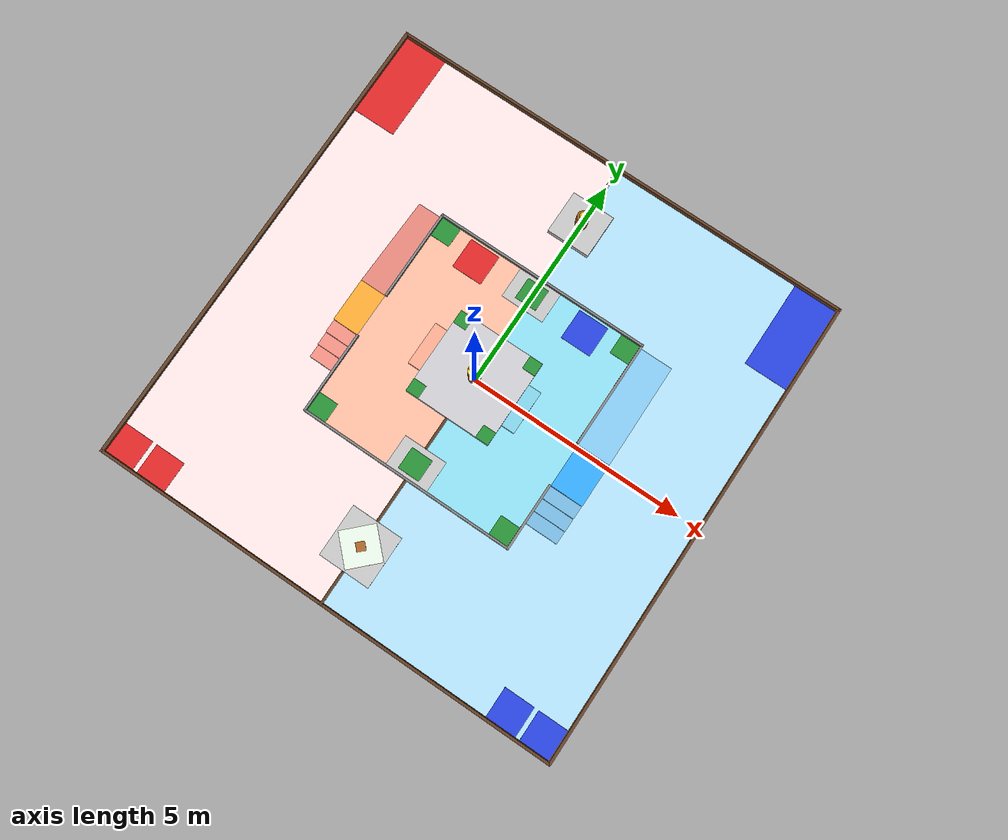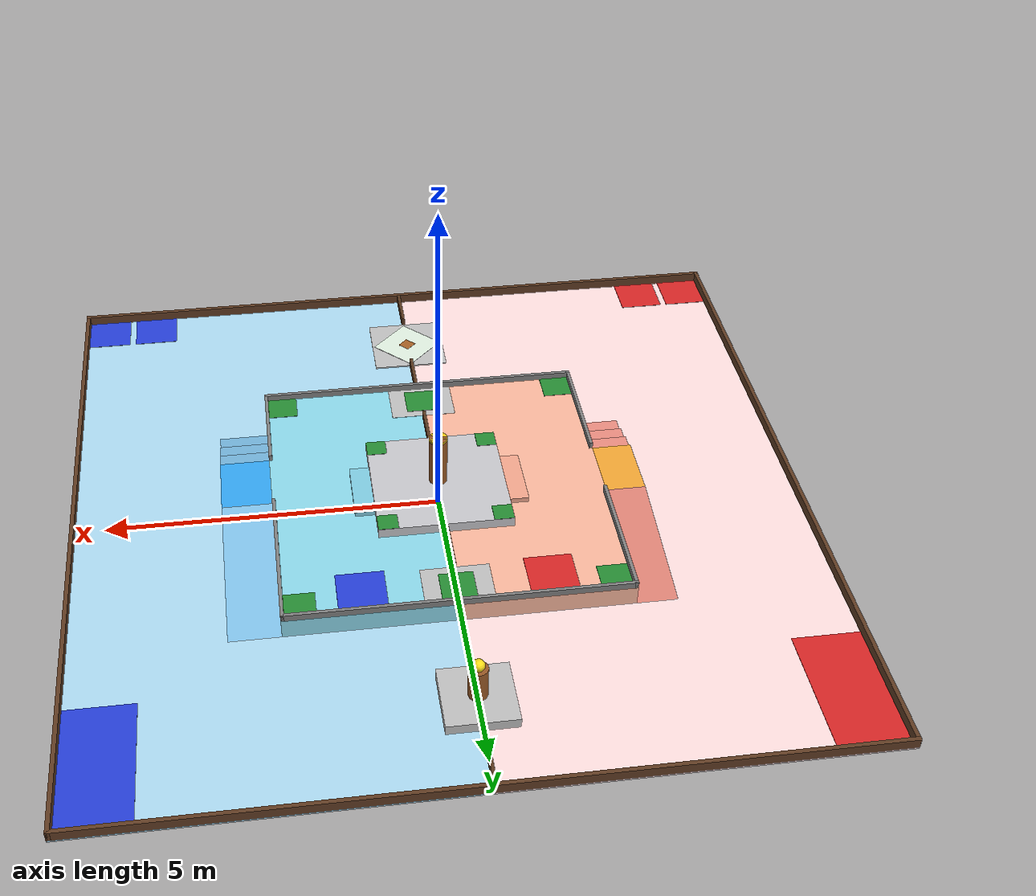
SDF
<?xml version="1.0"?>
<sdf version="1.8">
  <world name="default">

    <physics name="1ms" type="ignored">
      <max_step_size>0.001</max_step_size>
      <real_time_factor>1.0</real_time_factor>
    </physics>

    <plugin
      filename="gz-sim-physics-system"
      name="gz::sim::systems::Physics">
    </plugin>
    <plugin
      filename="gz-sim-user-commands-system"
      name="gz::sim::systems::UserCommands">
    </plugin>
    <plugin
      filename="gz-sim-scene-broadcaster-system"
      name="gz::sim::systems::SceneBroadcaster">
    </plugin>
    <plugin
      filename="gz-sim-sensors-system"
      name="gz::sim::systems::Sensors">
      <render_engine>ogre2</render_engine>
    </plugin>
    <plugin
      filename="gz-sim-imu-system"
      name="gz::sim::systems::Imu">
    </plugin>

    <scene>
      <ambient>0.80 0.80 0.80 1.0</ambient>
      <background>0.70 0.85 0.95 1.0</background>
      <shadows>true</shadows>
      <grid>false</grid>
    </scene>

    <gui fullscreen='0'>
      <camera name='user_camera'>
        <pose>-6.5 -6.5 7.5 0 0.68 0.785</pose>
        <view_controller>orbit</view_controller>
        <projection_type>perspective</projection_type>
      </camera>
    </gui>

    <include>
      <uri>https://fuel.gazebosim.org/1.0/OpenRobotics/models/Sun</uri>
    </include>

    <!-- Base ground safety plane underneath the arena -->
    <model name="ground_plane">
      <static>true</static>
      <pose>0 0 -0.05 0 0 0</pose>
      <link name="link">
        <collision name="collision">
          <geometry>
            <plane>
              <normal>0 0 1</normal>
              <size>30 30</size>
            </plane>
          </geometry>
        </collision>
      </link>
    </model>

    <!-- Official Replica Model of ABU Robocon 2027 Arena (11m x 11m) -->
    <model name="robocon2027_field">
      <static>true</static>
      <include>
        <uri>model://robocon2027_field</uri>
      </include>
    </model>

  </world>
</sdf>

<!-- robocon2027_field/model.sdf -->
<sdf version="1.8">
  <model name="robocon2027_field">
    <static>true</static>

    <!-- 1. ARENA FLOOR (11000mm x 11000mm, Red & Blue Zones)           -->
    <link name='floor_red'>
      <pose>-2.7500 0.0000 -0.0100 0 0 0</pose>
      <collision name='floor_red_col'>
        <geometry><box><size>5.5000 11.0000 0.0200</size></box></geometry>
      </collision>
      <visual name='floor_red_vis'>
        <geometry><box><size>5.5000 11.0000 0.0200</size></box></geometry>
        <material>
          <ambient>1.000 0.880 0.880 1.000</ambient>
          <diffuse>1.000 0.880 0.880 1.000</diffuse>
          <specular>0.1 0.1 0.1 1.0</specular>
        </material>
      </visual>
    </link>

    <link name='floor_blue'>
      <pose>2.7500 0.0000 -0.0100 0 0 0</pose>
      <collision name='floor_blue_col'>
        <geometry><box><size>5.5000 11.0000 0.0200</size></box></geometry>
      </collision>
      <visual name='floor_blue_vis'>
        <geometry><box><size>5.5000 11.0000 0.0200</size></box></geometry>
        <material>
          <ambient>0.680 0.860 0.950 1.000</ambient>
          <diffuse>0.680 0.860 0.950 1.000</diffuse>
          <specular>0.1 0.1 0.1 1.0</specular>
        </material>
      </visual>
    </link>

    <!-- Center Line Tape Marking on Floor (between Red and Blue) -->
    <link name='center_line_tape'>
      <pose>0.0000 0.0000 0.0010 0 0 0</pose>
      <visual name='center_line_tape_vis'>
        <geometry><box><size>0.0500 11.0000 0.0020</size></box></geometry>
        <material>
          <ambient>0.350 0.220 0.120 1.000</ambient>
          <diffuse>0.350 0.220 0.120 1.000</diffuse>
        </material>
      </visual>
    </link>

    <!-- 2. PERIMETER WALLS (11000mm x 11000mm, Height: 150mm)          -->
    <link name='wall_north'>
      <pose>0.0000 5.4700 0.0750 0 0 0</pose>
      <collision name='wall_north_col'>
        <geometry><box><size>11.0000 0.0600 0.1500</size></box></geometry>
      </collision>
      <visual name='wall_north_vis'>
        <geometry><box><size>11.0000 0.0600 0.1500</size></box></geometry>
        <material>
          <ambient>0.380 0.240 0.140 1.000</ambient>
          <diffuse>0.380 0.240 0.140 1.000</diffuse>
        </material>
      </visual>
    </link>

    <link name='wall_south'>
      <pose>0.0000 -5.4700 0.0750 0 0 0</pose>
      <collision name='wall_south_col'>
        <geometry><box><size>11.0000 0.0600 0.1500</size></box></geometry>
      </collision>
      <visual name='wall_south_vis'>
        <geometry><box><size>11.0000 0.0600 0.1500</size></box></geometry>
        <material>
          <ambient>0.380 0.240 0.140 1.000</ambient>
          <diffuse>0.380 0.240 0.140 1.000</diffuse>
        </material>
      </visual>
    </link>

    <link name='wall_east'>
      <pose>5.4700 0.0000 0.0750 0 0 0</pose>
      <collision name='wall_east_col'>
        <geometry><box><size>0.0600 11.0000 0.1500</size></box></geometry>
      </collision>
      <visual name='wall_east_vis'>
        <geometry><box><size>0.0600 11.0000 0.1500</size></box></geometry>
        <material>
          <ambient>0.380 0.240 0.140 1.000</ambient>
          <diffuse>0.380 0.240 0.140 1.000</diffuse>
        </material>
      </visual>
    </link>

    <link name='wall_west'>
      <pose>-5.4700 0.0000 0.0750 0 0 0</pose>
      <collision name='wall_west_col'>
        <geometry><box><size>0.0600 11.0000 0.1500</size></box></geometry>
      </collision>
      <visual name='wall_west_vis'>
        <geometry><box><size>0.0600 11.0000 0.1500</size></box></geometry>
        <material>
          <ambient>0.380 0.240 0.140 1.000</ambient>
          <diffuse>0.380 0.240 0.140 1.000</diffuse>
        </material>
      </visual>
    </link>

    <!-- 3. LEVEL 1 PLATFORM (5000mm x 5000mm x 300mm)                  -->
    <link name='level1_red'>
      <pose>-1.2500 0.0000 0.1500 0 0 0</pose>
      <collision name='level1_red_col'>
        <geometry><box><size>2.5000 5.0000 0.3000</size></box></geometry>
      </collision>
      <visual name='level1_red_vis'>
        <geometry><box><size>2.5000 5.0000 0.3000</size></box></geometry>
        <material>
          <ambient>0.980 0.720 0.620 1.000</ambient>
          <diffuse>0.980 0.720 0.620 1.000</diffuse>
          <specular>0.1 0.1 0.1 1.0</specular>
        </material>
      </visual>
    </link>

    <link name='level1_blue'>
      <pose>1.2500 0.0000 0.1500 0 0 0</pose>
      <collision name='level1_blue_col'>
        <geometry><box><size>2.5000 5.0000 0.3000</size></box></geometry>
      </collision>
      <visual name='level1_blue_vis'>
        <geometry><box><size>2.5000 5.0000 0.3000</size></box></geometry>
        <material>
          <ambient>0.550 0.850 0.920 1.000</ambient>
          <diffuse>0.550 0.850 0.920 1.000</diffuse>
          <specular>0.1 0.1 0.1 1.0</specular>
        </material>
      </visual>
    </link>

    <!-- 4. L1 EXCLUSIVE BUILDING SPOTS (500mm x 500mm Green Squares)   -->
    <link name='l1_spot_sw'>
      <pose>-2.2500 -2.2500 0.3025 0 0 0</pose>
      <visual name='l1_spot_sw_vis'>
        <geometry><box><size>0.5000 0.5000 0.0050</size></box></geometry>
        <material>
          <ambient>0.150 0.550 0.200 1.000</ambient>
          <diffuse>0.150 0.550 0.200 1.000</diffuse>
        </material>
      </visual>
    </link>

    <link name='l1_spot_nw'>
      <pose>-2.2500 2.2500 0.3025 0 0 0</pose>
      <visual name='l1_spot_nw_vis'>
        <geometry><box><size>0.5000 0.5000 0.0050</size></box></geometry>
        <material>
          <ambient>0.150 0.550 0.200 1.000</ambient>
          <diffuse>0.150 0.550 0.200 1.000</diffuse>
        </material>
      </visual>
    </link>

    <link name='l1_spot_se'>
      <pose>2.2500 -2.2500 0.3025 0 0 0</pose>
      <visual name='l1_spot_se_vis'>
        <geometry><box><size>0.5000 0.5000 0.0050</size></box></geometry>
        <material>
          <ambient>0.150 0.550 0.200 1.000</ambient>
          <diffuse>0.150 0.550 0.200 1.000</diffuse>
        </material>
      </visual>
    </link>

    <link name='l1_spot_ne'>
      <pose>2.2500 2.2500 0.3025 0 0 0</pose>
      <visual name='l1_spot_ne_vis'>
        <geometry><box><size>0.5000 0.5000 0.0050</size></box></geometry>
        <material>
          <ambient>0.150 0.550 0.200 1.000</ambient>
          <diffuse>0.150 0.550 0.200 1.000</diffuse>
        </material>
      </visual>
    </link>

    <!-- 5. L1 SHARED BUILDING SPOTS (1000mm x 750mm Grey Pad + Green)  -->
    <!-- North L1 Shared Area -->
    <link name='l1_shared_north_base'>
      <pose>0.0000 2.1250 0.3020 0 0 0</pose>
      <visual name='l1_shared_north_base_vis'>
        <geometry><box><size>1.0000 0.7500 0.0040</size></box></geometry>
        <material>
          <ambient>0.750 0.750 0.750 1.000</ambient>
          <diffuse>0.750 0.750 0.750 1.000</diffuse>
        </material>
      </visual>
    </link>

    <link name='l1_shared_north_spot'>
      <pose>0.0000 2.1250 0.3050 0 0 0</pose>
      <visual name='l1_shared_north_spot_vis'>
        <geometry><box><size>0.5000 0.5000 0.0050</size></box></geometry>
        <material>
          <ambient>0.150 0.550 0.200 1.000</ambient>
          <diffuse>0.150 0.550 0.200 1.000</diffuse>
        </material>
      </visual>
    </link>

    <!-- South L1 Shared Area -->
    <link name='l1_shared_south_base'>
      <pose>0.0000 -2.1250 0.3020 0 0 0</pose>
      <visual name='l1_shared_south_base_vis'>
        <geometry><box><size>1.0000 0.7500 0.0040</size></box></geometry>
        <material>
          <ambient>0.750 0.750 0.750 1.000</ambient>
          <diffuse>0.750 0.750 0.750 1.000</diffuse>
        </material>
      </visual>
    </link>

    <link name='l1_shared_south_spot'>
      <pose>0.0000 -2.1250 0.3050 0 0 0</pose>
      <visual name='l1_shared_south_spot_vis'>
        <geometry><box><size>0.5000 0.5000 0.0050</size></box></geometry>
        <material>
          <ambient>0.150 0.550 0.200 1.000</ambient>
          <diffuse>0.150 0.550 0.200 1.000</diffuse>
        </material>
      </visual>
    </link>

    <!-- 6. LEVEL 1 RETRY ZONES (700mm x 700mm)                         -->
    <link name='retry_zone_l1_red'>
      <pose>-1.3500 2.0500 0.3025 0 0 0</pose>
      <visual name='retry_zone_l1_red_vis'>
        <geometry><box><size>0.7000 0.7000 0.0050</size></box></geometry>
        <material>
          <ambient>0.850 0.150 0.150 1.000</ambient>
          <diffuse>0.850 0.150 0.150 1.000</diffuse>
        </material>
      </visual>
    </link>

    <link name='retry_zone_l1_blue'>
      <pose>1.3500 2.0500 0.3025 0 0 0</pose>
      <visual name='retry_zone_l1_blue_vis'>
        <geometry><box><size>0.7000 0.7000 0.0050</size></box></geometry>
        <material>
          <ambient>0.150 0.250 0.850 1.000</ambient>
          <diffuse>0.150 0.250 0.850 1.000</diffuse>
        </material>
      </visual>
    </link>

    <!-- 7. LEVEL 2 PLATFORM & CONNECTING STEPS                         -->
    <!-- Level 2 Platform (2000mm x 2000mm x 150mm, Top surface at Z=0.45m) -->
    <link name='level2_platform'>
      <pose>0.0000 0.0000 0.3750 0 0 0</pose>
      <collision name='level2_platform_col'>
        <geometry><box><size>2.0000 2.0000 0.1500</size></box></geometry>
      </collision>
      <visual name='level2_platform_vis'>
        <geometry><box><size>2.0000 2.0000 0.1500</size></box></geometry>
        <material>
          <ambient>0.780 0.780 0.800 1.000</ambient>
          <diffuse>0.780 0.780 0.800 1.000</diffuse>
          <specular>0.1 0.1 0.1 1.0</specular>
        </material>
      </visual>
    </link>

    <!-- Level 2 Connecting Step (Red Side: 1000mm x 300mm x 75mm) -->
    <link name='l2_step_red'>
      <pose>-1.1500 0.0000 0.3375 0 0 0</pose>
      <collision name='l2_step_red_col'>
        <geometry><box><size>0.3000 1.0000 0.0750</size></box></geometry>
      </collision>
      <visual name='l2_step_red_vis'>
        <geometry><box><size>0.3000 1.0000 0.0750</size></box></geometry>
        <material>
          <ambient>0.950 0.650 0.550 1.000</ambient>
          <diffuse>0.950 0.650 0.550 1.000</diffuse>
        </material>
      </visual>
    </link>

    <!-- Level 2 Connecting Step (Blue Side: 1000mm x 300mm x 75mm) -->
    <link name='l2_step_blue'>
      <pose>1.1500 0.0000 0.3375 0 0 0</pose>
      <collision name='l2_step_blue_col'>
        <geometry><box><size>0.3000 1.0000 0.0750</size></box></geometry>
      </collision>
      <visual name='l2_step_blue_vis'>
        <geometry><box><size>0.3000 1.0000 0.0750</size></box></geometry>
        <material>
          <ambient>0.500 0.800 0.880 1.000</ambient>
          <diffuse>0.500 0.800 0.880 1.000</diffuse>
        </material>
      </visual>
    </link>

    <!-- 8. LEVEL 2 SHARED BUILDING SPOTS (300mm x 300mm Green Targets) -->
    <link name='l2_spot_sw'>
      <pose>-0.8500 -0.8500 0.4525 0 0 0</pose>
      <visual name='l2_spot_sw_vis'>
        <geometry><box><size>0.3000 0.3000 0.0050</size></box></geometry>
        <material>
          <ambient>0.150 0.550 0.200 1.000</ambient>
          <diffuse>0.150 0.550 0.200 1.000</diffuse>
        </material>
      </visual>
    </link>

    <link name='l2_spot_nw'>
      <pose>-0.8500 0.8500 0.4525 0 0 0</pose>
      <visual name='l2_spot_nw_vis'>
        <geometry><box><size>0.3000 0.3000 0.0050</size></box></geometry>
        <material>
          <ambient>0.150 0.550 0.200 1.000</ambient>
          <diffuse>0.150 0.550 0.200 1.000</diffuse>
        </material>
      </visual>
    </link>

    <link name='l2_spot_se'>
      <pose>0.8500 -0.8500 0.4525 0 0 0</pose>
      <visual name='l2_spot_se_vis'>
        <geometry><box><size>0.3000 0.3000 0.0050</size></box></geometry>
        <material>
          <ambient>0.150 0.550 0.200 1.000</ambient>
          <diffuse>0.150 0.550 0.200 1.000</diffuse>
        </material>
      </visual>
    </link>

    <link name='l2_spot_ne'>
      <pose>0.8500 0.8500 0.4525 0 0 0</pose>
      <visual name='l2_spot_ne_vis'>
        <geometry><box><size>0.3000 0.3000 0.0050</size></box></geometry>
        <material>
          <ambient>0.150 0.550 0.200 1.000</ambient>
          <diffuse>0.150 0.550 0.200 1.000</diffuse>
        </material>
      </visual>
    </link>

    <!-- 9. CENTRAL PILLAR (Level 2: Height 800mm, Diameter 270mm)       -->
    <link name='central_pillar_body'>
      <pose>0.0000 0.0000 0.8500 0 0 0</pose>
      <collision name='central_pillar_body_col'>
        <geometry><cylinder><radius>0.1350</radius><length>0.8000</length></cylinder></geometry>
      </collision>
      <visual name='central_pillar_body_vis'>
        <geometry><cylinder><radius>0.1350</radius><length>0.8000</length></cylinder></geometry>
        <material>
          <ambient>0.600 0.350 0.150 1.000</ambient>
          <diffuse>0.600 0.350 0.150 1.000</diffuse>
          <specular>0.2 0.2 0.2 1.0</specular>
        </material>
      </visual>
    </link>

    <link name='central_pillar_rim'>
      <pose>0.0000 0.0000 1.2350 0 0 0</pose>
      <visual name='central_pillar_rim_vis'>
        <geometry><cylinder><radius>0.1400</radius><length>0.0300</length></cylinder></geometry>
        <material>
          <ambient>0.950 0.800 0.100 1.000</ambient>
          <diffuse>0.950 0.800 0.100 1.000</diffuse>
          <specular>0.3 0.3 0.3 1.0</specular>
        </material>
      </visual>
    </link>

    <!-- 10. GROUND MUSTIKA PILLAR (Height 500mm, Diameter 270mm)       -->
    <link name='ground_mustika_base'>
      <pose>0.0000 4.0000 0.0750 0 0 0</pose>
      <collision name='ground_mustika_base_col'>
        <geometry><box><size>1.0000 1.0000 0.1500</size></box></geometry>
      </collision>
      <visual name='ground_mustika_base_vis'>
        <geometry><box><size>1.0000 1.0000 0.1500</size></box></geometry>
        <material>
          <ambient>0.750 0.750 0.750 1.000</ambient>
          <diffuse>0.750 0.750 0.750 1.000</diffuse>
        </material>
      </visual>
    </link>

    <link name='ground_mustika_body'>
      <pose>0.0000 4.0000 0.4000 0 0 0</pose>
      <collision name='ground_mustika_body_col'>
        <geometry><cylinder><radius>0.1350</radius><length>0.5000</length></cylinder></geometry>
      </collision>
      <visual name='ground_mustika_body_vis'>
        <geometry><cylinder><radius>0.1350</radius><length>0.5000</length></cylinder></geometry>
        <material>
          <ambient>0.600 0.350 0.150 1.000</ambient>
          <diffuse>0.600 0.350 0.150 1.000</diffuse>
        </material>
      </visual>
    </link>

    <!-- Mustika Orb (Placed securely on top of Ground Mustika Pillar) -->
    <link name='mustika_orb'>
      <pose>0.0000 4.0000 0.7000 0 0 0</pose>
      <collision name='mustika_orb_col'>
        <geometry><sphere><radius>0.0900</radius></sphere></geometry>
      </collision>
      <visual name='mustika_orb_vis'>
        <geometry><sphere><radius>0.0900</radius></sphere></geometry>
        <material>
          <ambient>0.960 0.850 0.100 1.000</ambient>
          <diffuse>0.960 0.850 0.100 1.000</diffuse>
          <specular>0.4 0.4 0.4 1.0</specular>
        </material>
      </visual>
    </link>

    <!-- 11. GROUND SHARED AREA (1200mm x 1200mm Checkered Grid)        -->
    <link name='checkered_grid_base'>
      <pose>0.0000 -4.1000 0.0100 0 0 0</pose>
      <collision name='checkered_grid_base_col'>
        <geometry><box><size>1.2000 1.2000 0.0200</size></box></geometry>
      </collision>
      <visual name='checkered_grid_base_vis'>
        <geometry><box><size>1.2000 1.2000 0.0200</size></box></geometry>
        <material>
          <ambient>0.750 0.750 0.750 1.000</ambient>
          <diffuse>0.750 0.750 0.750 1.000</diffuse>
        </material>
      </visual>
    </link>

    <link name='checkered_grid_inner'>
      <pose>0.0000 -4.1000 0.0220 0 0 0.7854</pose>
      <visual name='checkered_grid_inner_vis'>
        <geometry><box><size>0.8000 0.8000 0.0050</size></box></geometry>
        <material>
          <ambient>0.880 0.940 0.880 1.000</ambient>
          <diffuse>0.880 0.940 0.880 1.000</diffuse>
        </material>
      </visual>
    </link>

    <link name='checkered_grid_center'>
      <pose>0.0000 -4.1000 0.0250 0 0 0.7854</pose>
      <visual name='checkered_grid_center_vis'>
        <geometry><box><size>0.2000 0.2000 0.0050</size></box></geometry>
        <material>
          <ambient>0.650 0.380 0.150 1.000</ambient>
          <diffuse>0.650 0.380 0.150 1.000</diffuse>
        </material>
      </visual>
    </link>

    <!-- 12. RED SIDE RAMPS & STAIRS (West Face: Width 600mm)           -->
    <!-- Attached to Level 1 West Edge at X = -2.50m                    -->
    <!-- Orange Landing (600mm wide x 1000mm long x 300mm high, flush with L1) -->
    <link name='ramp_red_landing'>
      <pose>-2.8000 -0.1000 0.1500 0 0 0</pose>
      <collision name='ramp_red_landing_col'>
        <geometry><box><size>0.6000 1.0000 0.3000</size></box></geometry>
      </collision>
      <visual name='ramp_red_landing_vis'>
        <geometry><box><size>0.6000 1.0000 0.3000</size></box></geometry>
        <material>
          <ambient>0.950 0.650 0.200 1.000</ambient>
          <diffuse>0.950 0.650 0.200 1.000</diffuse>
        </material>
      </visual>
    </link>

    <!-- Red Ramp Slope: Solid Triangular Wedge ending at Y = 2.50m (flush with Level 1) -->
    <link name='ramp_red_slope'>
      <pose>-2.8000 0.0000 0.0000 0 0 0</pose>
      <collision name='ramp_red_slope_col'>
        <pose>0.0000 1.4472 0.1302 -0.141897 0 0</pose>
        <geometry><box><size>0.6000 2.1513 0.0400</size></box></geometry>
        <surface>
          <friction>
            <ode>
              <mu>50.0</mu>
              <mu2>50.0</mu2>
            </ode>
          </friction>
          <contact>
            <ode>
              <kp>1000000.0</kp>
              <kd>1.0</kd>
              <min_depth>0.001</min_depth>
            </ode>
          </contact>
        </surface>
      </collision>
      <visual name='ramp_red_slope_vis'>
        <pose>0.0000 0.4000 0.0000 0 0 0</pose>
        <geometry>
          <mesh>
            <uri>model://robocon2027_field/meshes/ramp_red.obj</uri>
          </mesh>
        </geometry>
        <material>
          <ambient>0.850 0.500 0.450 1.000</ambient>
          <diffuse>0.850 0.500 0.450 1.000</diffuse>
        </material>
      </visual>
    </link>

    <!-- Red Stairs: 3 steps descending to ground (tread 300mm, rise 75mm) -->
    <!-- Step 2 (Highest: 225mm) -->
    <link name='stair_red_2'>
      <pose>-2.8000 -0.7500 0.1125 0 0 0</pose>
      <collision name='stair_red_2_col'>
        <geometry><box><size>0.6000 0.3000 0.2250</size></box></geometry>
      </collision>
      <visual name='stair_red_2_vis'>
        <geometry><box><size>0.6000 0.3000 0.2250</size></box></geometry>
        <material>
          <ambient>0.920 0.550 0.500 1.000</ambient>
          <diffuse>0.920 0.550 0.500 1.000</diffuse>
        </material>
      </visual>
    </link>

    <!-- Step 1 (Middle: 150mm) -->
    <link name='stair_red_1'>
      <pose>-2.8000 -1.0500 0.0750 0 0 0</pose>
      <collision name='stair_red_1_col'>
        <geometry><box><size>0.6000 0.3000 0.1500</size></box></geometry>
      </collision>
      <visual name='stair_red_1_vis'>
        <geometry><box><size>0.6000 0.3000 0.1500</size></box></geometry>
        <material>
          <ambient>0.920 0.550 0.500 1.000</ambient>
          <diffuse>0.920 0.550 0.500 1.000</diffuse>
        </material>
      </visual>
    </link>

    <!-- Step 0 (Lowest: 75mm, ends at Y = -1.50m, exactly 1000mm from SW corner) -->
    <link name='stair_red_0'>
      <pose>-2.8000 -1.3500 0.0375 0 0 0</pose>
      <collision name='stair_red_0_col'>
        <geometry><box><size>0.6000 0.3000 0.0750</size></box></geometry>
      </collision>
      <visual name='stair_red_0_vis'>
        <geometry><box><size>0.6000 0.3000 0.0750</size></box></geometry>
        <material>
          <ambient>0.920 0.550 0.500 1.000</ambient>
          <diffuse>0.920 0.550 0.500 1.000</diffuse>
        </material>
      </visual>
    </link>

    <!-- 13. BLUE SIDE RAMPS & STAIRS (East Face: Width 750mm)          -->
    <!-- Attached to Level 1 East Edge at X = +2.50m                    -->
    <!-- Cyan Landing (750mm wide x 1000mm long x 300mm high, flush with L1) -->
    <link name='ramp_blue_landing'>
      <pose>2.8750 -0.4500 0.1500 0 0 0</pose>
      <collision name='ramp_blue_landing_col'>
        <geometry><box><size>0.7500 1.0000 0.3000</size></box></geometry>
        <surface>
          <friction>
            <ode>
              <mu>50.0</mu>
              <mu2>50.0</mu2>
            </ode>
          </friction>
        </surface>
      </collision>
      <visual name='ramp_blue_landing_vis'>
        <geometry><box><size>0.7500 1.0000 0.3000</size></box></geometry>
        <material>
          <ambient>0.200 0.650 0.950 1.000</ambient>
          <diffuse>0.200 0.650 0.950 1.000</diffuse>
        </material>
      </visual>
    </link>

    <!-- Blue Ramp Slope: Solid Triangular Wedge ending at Y = 2.50m (flush with Level 1) -->
    <link name='ramp_blue_slope'>
      <pose>2.8750 0.0000 0.0000 0 0 0</pose>
      <collision name='ramp_blue_slope_col'>
        <pose>0.0000 1.2726 0.1301 -0.121842 0 0</pose>
        <geometry><box><size>0.7500 2.4983 0.0400</size></box></geometry>
        <surface>
          <friction>
            <ode>
              <mu>50.0</mu>
              <mu2>50.0</mu2>
            </ode>
          </friction>
          <contact>
            <ode>
              <kp>1000000.0</kp>
              <kd>1.0</kd>
              <min_depth>0.001</min_depth>
            </ode>
          </contact>
        </surface>
      </collision>
      <visual name='ramp_blue_slope_vis'>
        <pose>0.0000 0.0500 0.0000 0 0 0</pose>
        <geometry>
          <mesh>
            <uri>model://robocon2027_field/meshes/ramp_blue.obj</uri>
          </mesh>
        </geometry>
        <material>
          <ambient>0.500 0.750 0.900 1.000</ambient>
          <diffuse>0.500 0.750 0.900 1.000</diffuse>
        </material>
      </visual>
    </link>

    <!-- Blue Stairs: 3 steps descending to ground (tread 300mm, rise 75mm) -->
    <!-- Step 2 (Highest: 225mm) -->
    <link name='stair_blue_2'>
      <pose>2.8750 -1.1000 0.1125 0 0 0</pose>
      <collision name='stair_blue_2_col'>
        <geometry><box><size>0.7500 0.3000 0.2250</size></box></geometry>
      </collision>
      <visual name='stair_blue_2_vis'>
        <geometry><box><size>0.7500 0.3000 0.2250</size></box></geometry>
        <material>
          <ambient>0.450 0.700 0.850 1.000</ambient>
          <diffuse>0.450 0.700 0.850 1.000</diffuse>
        </material>
      </visual>
    </link>

    <!-- Step 1 (Middle: 150mm) -->
    <link name='stair_blue_1'>
      <pose>2.8750 -1.4000 0.0750 0 0 0</pose>
      <collision name='stair_blue_1_col'>
        <geometry><box><size>0.7500 0.3000 0.1500</size></box></geometry>
      </collision>
      <visual name='stair_blue_1_vis'>
        <geometry><box><size>0.7500 0.3000 0.1500</size></box></geometry>
        <material>
          <ambient>0.450 0.700 0.850 1.000</ambient>
          <diffuse>0.450 0.700 0.850 1.000</diffuse>
        </material>
      </visual>
    </link>

    <!-- Step 0 (Lowest: 75mm, ends at Y = -1.85m, exactly 650mm from SE corner) -->
    <link name='stair_blue_0'>
      <pose>2.8750 -1.7000 0.0375 0 0 0</pose>
      <collision name='stair_blue_0_col'>
        <geometry><box><size>0.7500 0.3000 0.0750</size></box></geometry>
      </collision>
      <visual name='stair_blue_0_vis'>
        <geometry><box><size>0.7500 0.3000 0.0750</size></box></geometry>
        <material>
          <ambient>0.450 0.700 0.850 1.000</ambient>
          <diffuse>0.450 0.700 0.850 1.000</diffuse>
        </material>
      </visual>
    </link>

    <!-- 14. STORAGE AREAS (1000mm x 2000mm along wall)                 -->
    <link name='storage_area_red'>
      <pose>-4.9500 4.4500 0.0025 0 0 0</pose>
      <visual name='storage_area_red_vis'>
        <geometry><box><size>1.0000 2.0000 0.0050</size></box></geometry>
        <material>
          <ambient>0.850 0.150 0.150 1.000</ambient>
          <diffuse>0.850 0.150 0.150 1.000</diffuse>
        </material>
      </visual>
    </link>

    <link name='storage_area_blue'>
      <pose>4.9500 4.4500 0.0025 0 0 0</pose>
      <visual name='storage_area_blue_vis'>
        <geometry><box><size>1.0000 2.0000 0.0050</size></box></geometry>
        <material>
          <ambient>0.150 0.250 0.850 1.000</ambient>
          <diffuse>0.150 0.250 0.850 1.000</diffuse>
        </material>
      </visual>
    </link>

    <!-- 15. START ZONES (Ground Area: Two 700mm x 700mm boxes each)    -->
    <!-- Red Start Zone: Corner Box -->
    <link name='start_zone_red_1'>
      <pose>-5.1000 -5.1000 0.0025 0 0 0</pose>
      <visual name='start_zone_red_1_vis'>
        <geometry><box><size>0.7000 0.7000 0.0050</size></box></geometry>
        <material>
          <ambient>0.850 0.150 0.150 1.000</ambient>
          <diffuse>0.850 0.150 0.150 1.000</diffuse>
        </material>
      </visual>
    </link>

    <!-- Red Start Zone: Adjacent Box -->
    <link name='start_zone_red_2'>
      <pose>-4.3000 -5.1000 0.0025 0 0 0</pose>
      <visual name='start_zone_red_2_vis'>
        <geometry><box><size>0.7000 0.7000 0.0050</size></box></geometry>
        <material>
          <ambient>0.850 0.150 0.150 1.000</ambient>
          <diffuse>0.850 0.150 0.150 1.000</diffuse>
        </material>
      </visual>
    </link>

    <!-- Blue Start Zone: Corner Box -->
    <link name='start_zone_blue_1'>
      <pose>5.1000 -5.1000 0.0025 0 0 0</pose>
      <visual name='start_zone_blue_1_vis'>
        <geometry><box><size>0.7000 0.7000 0.0050</size></box></geometry>
        <material>
          <ambient>0.150 0.250 0.850 1.000</ambient>
          <diffuse>0.150 0.250 0.850 1.000</diffuse>
        </material>
      </visual>
    </link>

    <!-- Blue Start Zone: Adjacent Box -->
    <link name='start_zone_blue_2'>
      <pose>4.3000 -5.1000 0.0025 0 0 0</pose>
      <visual name='start_zone_blue_2_vis'>
        <geometry><box><size>0.7000 0.7000 0.0050</size></box></geometry>
        <material>
          <ambient>0.150 0.250 0.850 1.000</ambient>
          <diffuse>0.150 0.250 0.850 1.000</diffuse>
        </material>
      </visual>
    </link>

    <!-- 16. LEVEL 1 PERIMETER BARRIER (Curbs along outer edges)         -->
    <!-- Openings at orange/cyan landings for seamless robot entry       -->
    <!-- North Barrier (Y = +2.50m edge) -->
    <link name='l1_barrier_north'>
      <pose>0.0000 2.4750 0.3500 0 0 0</pose>
      <collision name='l1_barrier_north_col'>
        <geometry><box><size>5.0000 0.0500 0.1000</size></box></geometry>
      </collision>
      <visual name='l1_barrier_north_vis'>
        <geometry><box><size>5.0000 0.0500 0.1000</size></box></geometry>
        <material>
          <ambient>0.500 0.500 0.500 1.000</ambient>
          <diffuse>0.500 0.500 0.500 1.000</diffuse>
        </material>
      </visual>
    </link>

    <!-- South Barrier (Y = -2.50m edge) -->
    <link name='l1_barrier_south'>
      <pose>0.0000 -2.4750 0.3500 0 0 0</pose>
      <collision name='l1_barrier_south_col'>
        <geometry><box><size>5.0000 0.0500 0.1000</size></box></geometry>
      </collision>
      <visual name='l1_barrier_south_vis'>
        <geometry><box><size>5.0000 0.0500 0.1000</size></box></geometry>
        <material>
          <ambient>0.500 0.500 0.500 1.000</ambient>
          <diffuse>0.500 0.500 0.500 1.000</diffuse>
        </material>
      </visual>
    </link>

    <!-- West Barrier South Segment (from Y = -2.50m to Y = -0.60m) -->
    <link name='l1_barrier_west_south'>
      <pose>-2.4750 -1.5500 0.3500 0 0 0</pose>
      <collision name='l1_barrier_west_south_col'>
        <geometry><box><size>0.0500 1.9000 0.1000</size></box></geometry>
      </collision>
      <visual name='l1_barrier_west_south_vis'>
        <geometry><box><size>0.0500 1.9000 0.1000</size></box></geometry>
        <material>
          <ambient>0.500 0.500 0.500 1.000</ambient>
          <diffuse>0.500 0.500 0.500 1.000</diffuse>
        </material>
      </visual>
    </link>

    <!-- West Barrier North Segment (from Y = +0.40m to Y = +2.50m) -->
    <link name='l1_barrier_west_north'>
      <pose>-2.4750 1.4500 0.3500 0 0 0</pose>
      <collision name='l1_barrier_west_north_col'>
        <geometry><box><size>0.0500 2.1000 0.1000</size></box></geometry>
      </collision>
      <visual name='l1_barrier_west_north_vis'>
        <geometry><box><size>0.0500 2.1000 0.1000</size></box></geometry>
        <material>
          <ambient>0.500 0.500 0.500 1.000</ambient>
          <diffuse>0.500 0.500 0.500 1.000</diffuse>
        </material>
      </visual>
    </link>

    <!-- East Barrier South Segment (from Y = -2.50m to Y = -0.95m) -->
    <link name='l1_barrier_east_south'>
      <pose>2.4750 -1.7250 0.3500 0 0 0</pose>
      <collision name='l1_barrier_east_south_col'>
        <geometry><box><size>0.0500 1.5500 0.1000</size></box></geometry>
      </collision>
      <visual name='l1_barrier_east_south_vis'>
        <geometry><box><size>0.0500 1.5500 0.1000</size></box></geometry>
        <material>
          <ambient>0.500 0.500 0.500 1.000</ambient>
          <diffuse>0.500 0.500 0.500 1.000</diffuse>
        </material>
      </visual>
    </link>

    <!-- East Barrier North Segment (from Y = +0.05m to Y = +2.50m) -->
    <link name='l1_barrier_east_north'>
      <pose>2.4750 1.2750 0.3500 0 0 0</pose>
      <collision name='l1_barrier_east_north_col'>
        <geometry><box><size>0.0500 2.4500 0.1000</size></box></geometry>
      </collision>
      <visual name='l1_barrier_east_north_vis'>
        <geometry><box><size>0.0500 2.4500 0.1000</size></box></geometry>
        <material>
          <ambient>0.500 0.500 0.500 1.000</ambient>
          <diffuse>0.500 0.500 0.500 1.000</diffuse>
        </material>
      </visual>
    </link>

    <!-- 17. CENTER DIVIDER (Fence along X = 0 separating Red & Blue)    -->
    <!-- North Ground Segment 1: Wall (5.5m) to Mustika Base (4.5m) -->
    <link name='divider_ground_north_1'>
      <pose>0.0000 5.0000 0.0750 0 0 0</pose>
      <collision name='divider_ground_north_1_col'>
        <geometry><box><size>0.0500 1.0000 0.1500</size></box></geometry>
      </collision>
      <visual name='divider_ground_north_1_vis'>
        <geometry><box><size>0.0500 1.0000 0.1500</size></box></geometry>
        <material>
          <ambient>0.350 0.220 0.120 1.000</ambient>
          <diffuse>0.350 0.220 0.120 1.000</diffuse>
        </material>
      </visual>
    </link>

    <!-- North Ground Segment 2: Mustika Base (3.5m) to L1 Edge (2.5m) -->
    <link name='divider_ground_north_2'>
      <pose>0.0000 3.0000 0.0750 0 0 0</pose>
      <collision name='divider_ground_north_2_col'>
        <geometry><box><size>0.0500 1.0000 0.1500</size></box></geometry>
      </collision>
      <visual name='divider_ground_north_2_vis'>
        <geometry><box><size>0.0500 1.0000 0.1500</size></box></geometry>
        <material>
          <ambient>0.350 0.220 0.120 1.000</ambient>
          <diffuse>0.350 0.220 0.120 1.000</diffuse>
        </material>
      </visual>
    </link>

    <!-- Level 1 North Divider: L2 (1.0m) to L1 Shared Area (1.75m) -->
    <link name='divider_l1_north'>
      <pose>0.0000 1.3750 0.3500 0 0 0</pose>
      <collision name='divider_l1_north_col'>
        <geometry><box><size>0.0500 0.7500 0.1000</size></box></geometry>
      </collision>
      <visual name='divider_l1_north_vis'>
        <geometry><box><size>0.0500 0.7500 0.1000</size></box></geometry>
        <material>
          <ambient>0.350 0.220 0.120 1.000</ambient>
          <diffuse>0.350 0.220 0.120 1.000</diffuse>
        </material>
      </visual>
    </link>

    <!-- Level 1 South Divider: L2 (-1.0m) to L1 Shared Area (-1.75m) -->
    <link name='divider_l1_south'>
      <pose>0.0000 -1.3750 0.3500 0 0 0</pose>
      <collision name='divider_l1_south_col'>
        <geometry><box><size>0.0500 0.7500 0.1000</size></box></geometry>
      </collision>
      <visual name='divider_l1_south_vis'>
        <geometry><box><size>0.0500 0.7500 0.1000</size></box></geometry>
        <material>
          <ambient>0.350 0.220 0.120 1.000</ambient>
          <diffuse>0.350 0.220 0.120 1.000</diffuse>
        </material>
      </visual>
    </link>

    <!-- South Ground Segment 1: L1 Edge (-2.5m) to Checkered Grid (-3.5m) -->
    <link name='divider_ground_south_1'>
      <pose>0.0000 -3.0000 0.0750 0 0 0</pose>
      <collision name='divider_ground_south_1_col'>
        <geometry><box><size>0.0500 1.0000 0.1500</size></box></geometry>
      </collision>
      <visual name='divider_ground_south_1_vis'>
        <geometry><box><size>0.0500 1.0000 0.1500</size></box></geometry>
        <material>
          <ambient>0.350 0.220 0.120 1.000</ambient>
          <diffuse>0.350 0.220 0.120 1.000</diffuse>
        </material>
      </visual>
    </link>

    <!-- South Ground Segment 2: Checkered Grid (-4.7m) to South Wall (-5.5m) -->
    <link name='divider_ground_south_2'>
      <pose>0.0000 -5.1000 0.0750 0 0 0</pose>
      <collision name='divider_ground_south_2_col'>
        <geometry><box><size>0.0500 0.8000 0.1500</size></box></geometry>
      </collision>
      <visual name='divider_ground_south_2_vis'>
        <geometry><box><size>0.0500 0.8000 0.1500</size></box></geometry>
        <material>
          <ambient>0.350 0.220 0.120 1.000</ambient>
          <diffuse>0.350 0.220 0.120 1.000</diffuse>
        </material>
      </visual>
    </link>

  </model>
</sdf>
